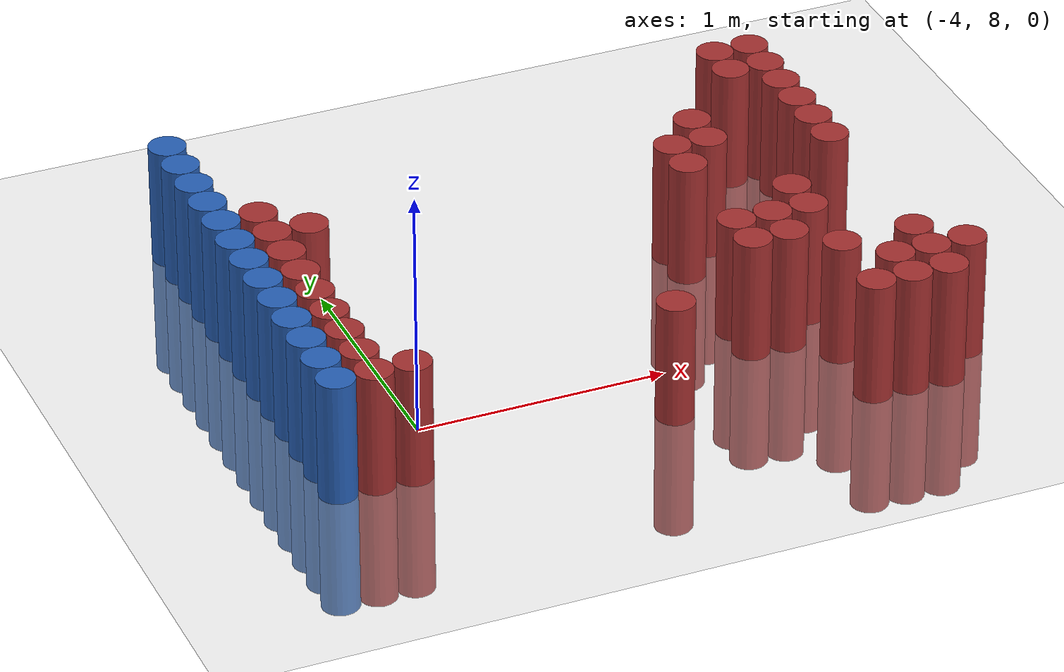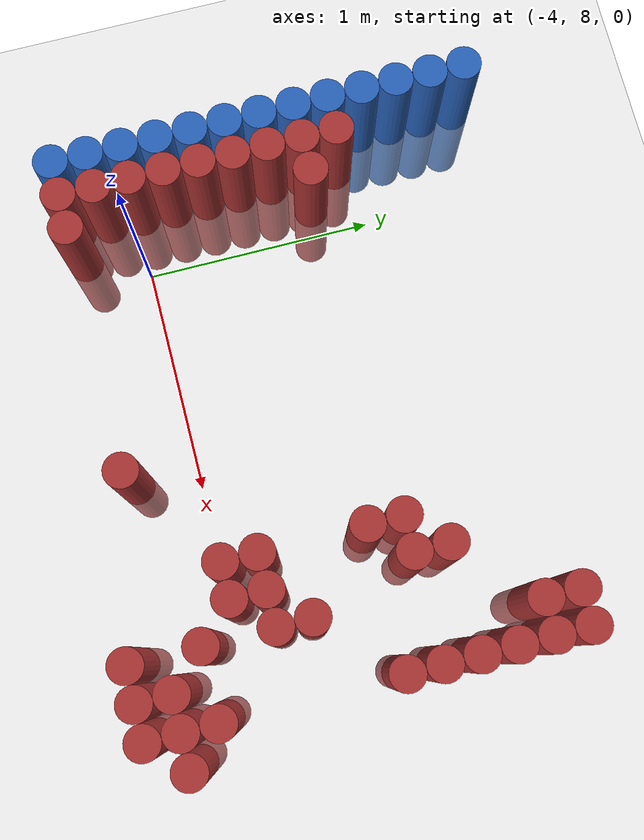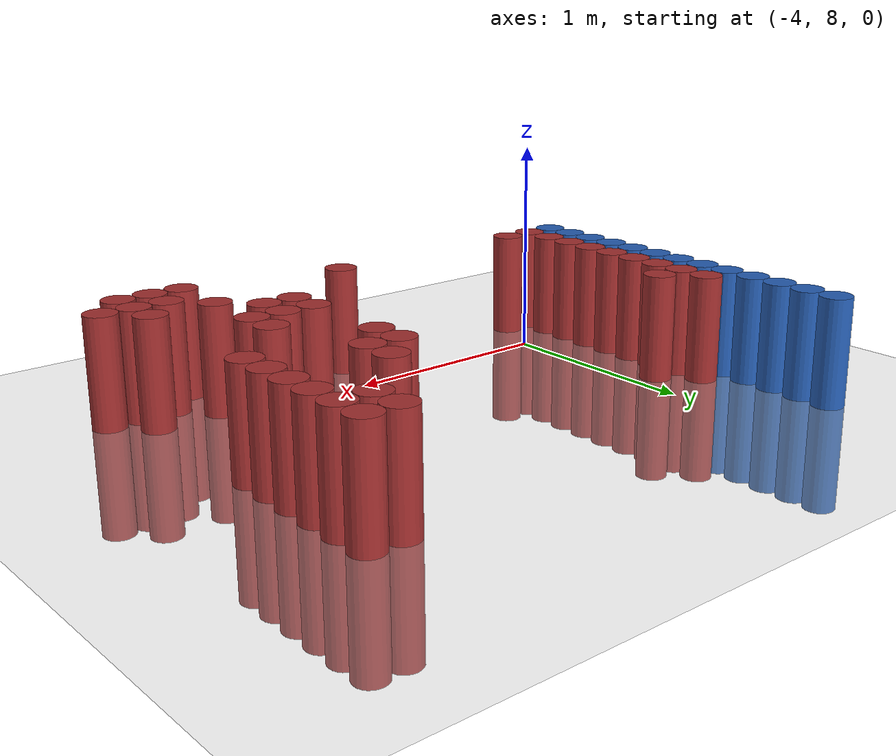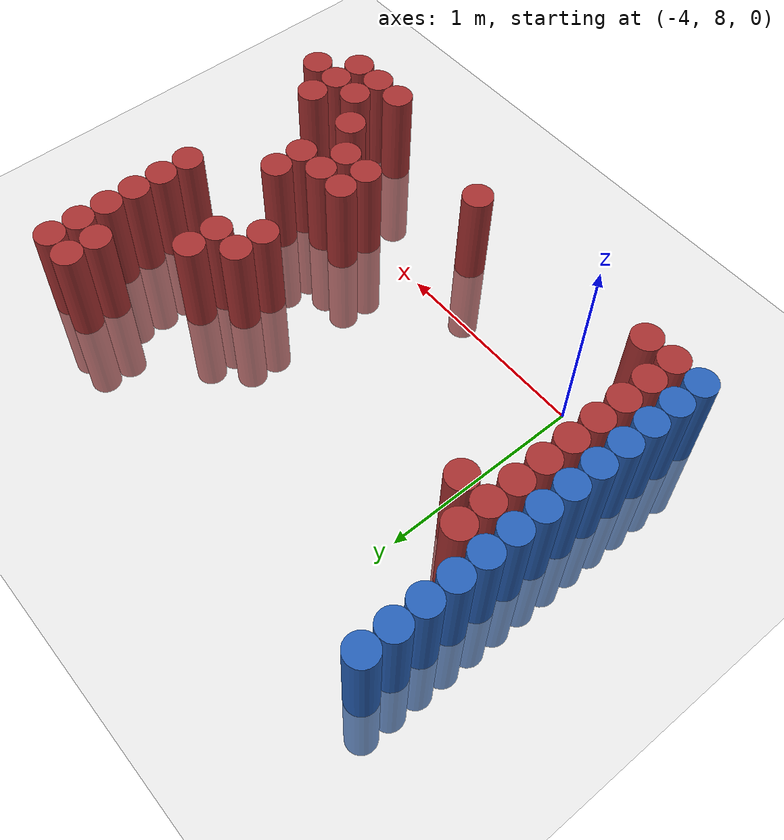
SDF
<sdf version="1.6">
 <world name="default">
  <model name="ground_plane">
   <static>1</static>
   <link name="link">
    <collision name="collision">
     <geometry><plane><normal>0 0 1</normal><size>100 100</size></plane></geometry>
     <surface><friction><ode><mu>100</mu><mu2>50</mu2></ode></friction></surface>
    </collision>
    <visual name="visual">
     <cast_shadows>0</cast_shadows>
     <geometry><plane><normal>0 0 1</normal><size>100 100</size></plane></geometry>
     <material>
      <script><uri>file://media/materials/scripts/gazebo.material</uri><name>Gazebo/Grey</name></script>
     </material>
    </visual>
   </link>
  </model>
  <model name="unit_cylinder_113">
   <static>1</static>
   <pose>-4.425000 7.725000 0.000000 0.000000 0.000000 0.000000</pose>
   <link name="link">
    <inertial>
     <mass>1</mass>
     <inertia><ixx>0.145833</ixx><ixy>0</ixy><ixz>0</ixz><iyy>0.145833</iyy><iyz>0</iyz><izz>0.125</izz></inertia>
    </inertial>
    <collision name="collision">
     <geometry><cylinder><radius>0.075000</radius><length>1</length></cylinder></geometry>
    </collision>
    <visual name="visual">
     <geometry><cylinder><radius>0.075000</radius><length>1</length></cylinder></geometry>
     <material>
      <ambient>0.152000 0.379000 0.720000 1</ambient>
      <diffuse>0.152000 0.379000 0.720000 1</diffuse>
     </material>
     <material>
      <script><name>Gazebo/Grey</name><uri>file://media/materials/scripts/gazebo.material</uri></script>
     </material>
    </visual>
   </link>
  </model>
  <model name="unit_cylinder_114">
   <static>1</static>
   <pose>-4.425000 7.875000 0.000000 0.000000 0.000000 0.000000</pose>
   <link name="link">
    <inertial>
     <mass>1</mass>
     <inertia><ixx>0.145833</ixx><ixy>0</ixy><ixz>0</ixz><iyy>0.145833</iyy><iyz>0</iyz><izz>0.125</izz></inertia>
    </inertial>
    <collision name="collision">
     <geometry><cylinder><radius>0.075000</radius><length>1</length></cylinder></geometry>
    </collision>
    <visual name="visual">
     <geometry><cylinder><radius>0.075000</radius><length>1</length></cylinder></geometry>
     <material>
      <ambient>0.152000 0.379000 0.720000 1</ambient>
      <diffuse>0.152000 0.379000 0.720000 1</diffuse>
     </material>
     <material>
      <script><name>Gazebo/Grey</name><uri>file://media/materials/scripts/gazebo.material</uri></script>
     </material>
    </visual>
   </link>
  </model>
  <model name="unit_cylinder_115">
   <static>1</static>
   <pose>-4.425000 8.025000 0.000000 0.000000 0.000000 0.000000</pose>
   <link name="link">
    <inertial>
     <mass>1</mass>
     <inertia><ixx>0.145833</ixx><ixy>0</ixy><ixz>0</ixz><iyy>0.145833</iyy><iyz>0</iyz><izz>0.125</izz></inertia>
    </inertial>
    <collision name="collision">
     <geometry><cylinder><radius>0.075000</radius><length>1</length></cylinder></geometry>
    </collision>
    <visual name="visual">
     <geometry><cylinder><radius>0.075000</radius><length>1</length></cylinder></geometry>
     <material>
      <ambient>0.152000 0.379000 0.720000 1</ambient>
      <diffuse>0.152000 0.379000 0.720000 1</diffuse>
     </material>
     <material>
      <script><name>Gazebo/Grey</name><uri>file://media/materials/scripts/gazebo.material</uri></script>
     </material>
    </visual>
   </link>
  </model>
  <model name="unit_cylinder_116">
   <static>1</static>
   <pose>-4.425000 8.175000 0.000000 0.000000 0.000000 0.000000</pose>
   <link name="link">
    <inertial>
     <mass>1</mass>
     <inertia><ixx>0.145833</ixx><ixy>0</ixy><ixz>0</ixz><iyy>0.145833</iyy><iyz>0</iyz><izz>0.125</izz></inertia>
    </inertial>
    <collision name="collision">
     <geometry><cylinder><radius>0.075000</radius><length>1</length></cylinder></geometry>
    </collision>
    <visual name="visual">
     <geometry><cylinder><radius>0.075000</radius><length>1</length></cylinder></geometry>
     <material>
      <ambient>0.152000 0.379000 0.720000 1</ambient>
      <diffuse>0.152000 0.379000 0.720000 1</diffuse>
     </material>
     <material>
      <script><name>Gazebo/Grey</name><uri>file://media/materials/scripts/gazebo.material</uri></script>
     </material>
    </visual>
   </link>
  </model>
  <model name="unit_cylinder_117">
   <static>1</static>
   <pose>-4.425000 8.325000 0.000000 0.000000 0.000000 0.000000</pose>
   <link name="link">
    <inertial>
     <mass>1</mass>
     <inertia><ixx>0.145833</ixx><ixy>0</ixy><ixz>0</ixz><iyy>0.145833</iyy><iyz>0</iyz><izz>0.125</izz></inertia>
    </inertial>
    <collision name="collision">
     <geometry><cylinder><radius>0.075000</radius><length>1</length></cylinder></geometry>
    </collision>
    <visual name="visual">
     <geometry><cylinder><radius>0.075000</radius><length>1</length></cylinder></geometry>
     <material>
      <ambient>0.152000 0.379000 0.720000 1</ambient>
      <diffuse>0.152000 0.379000 0.720000 1</diffuse>
     </material>
     <material>
      <script><name>Gazebo/Grey</name><uri>file://media/materials/scripts/gazebo.material</uri></script>
     </material>
    </visual>
   </link>
  </model>
  <model name="unit_cylinder_118">
   <static>1</static>
   <pose>-4.425000 8.475000 0.000000 0.000000 0.000000 0.000000</pose>
   <link name="link">
    <inertial>
     <mass>1</mass>
     <inertia><ixx>0.145833</ixx><ixy>0</ixy><ixz>0</ixz><iyy>0.145833</iyy><iyz>0</iyz><izz>0.125</izz></inertia>
    </inertial>
    <collision name="collision">
     <geometry><cylinder><radius>0.075000</radius><length>1</length></cylinder></geometry>
    </collision>
    <visual name="visual">
     <geometry><cylinder><radius>0.075000</radius><length>1</length></cylinder></geometry>
     <material>
      <ambient>0.152000 0.379000 0.720000 1</ambient>
      <diffuse>0.152000 0.379000 0.720000 1</diffuse>
     </material>
     <material>
      <script><name>Gazebo/Grey</name><uri>file://media/materials/scripts/gazebo.material</uri></script>
     </material>
    </visual>
   </link>
  </model>
  <model name="unit_cylinder_119">
   <static>1</static>
   <pose>-4.425000 8.625000 0.000000 0.000000 0.000000 0.000000</pose>
   <link name="link">
    <inertial>
     <mass>1</mass>
     <inertia><ixx>0.145833</ixx><ixy>0</ixy><ixz>0</ixz><iyy>0.145833</iyy><iyz>0</iyz><izz>0.125</izz></inertia>
    </inertial>
    <collision name="collision">
     <geometry><cylinder><radius>0.075000</radius><length>1</length></cylinder></geometry>
    </collision>
    <visual name="visual">
     <geometry><cylinder><radius>0.075000</radius><length>1</length></cylinder></geometry>
     <material>
      <ambient>0.152000 0.379000 0.720000 1</ambient>
      <diffuse>0.152000 0.379000 0.720000 1</diffuse>
     </material>
     <material>
      <script><name>Gazebo/Grey</name><uri>file://media/materials/scripts/gazebo.material</uri></script>
     </material>
    </visual>
   </link>
  </model>
  <model name="unit_cylinder_120">
   <static>1</static>
   <pose>-4.425000 8.775000 0.000000 0.000000 0.000000 0.000000</pose>
   <link name="link">
    <inertial>
     <mass>1</mass>
     <inertia><ixx>0.145833</ixx><ixy>0</ixy><ixz>0</ixz><iyy>0.145833</iyy><iyz>0</iyz><izz>0.125</izz></inertia>
    </inertial>
    <collision name="collision">
     <geometry><cylinder><radius>0.075000</radius><length>1</length></cylinder></geometry>
    </collision>
    <visual name="visual">
     <geometry><cylinder><radius>0.075000</radius><length>1</length></cylinder></geometry>
     <material>
      <ambient>0.152000 0.379000 0.720000 1</ambient>
      <diffuse>0.152000 0.379000 0.720000 1</diffuse>
     </material>
     <material>
      <script><name>Gazebo/Grey</name><uri>file://media/materials/scripts/gazebo.material</uri></script>
     </material>
    </visual>
   </link>
  </model>
  <model name="unit_cylinder_121">
   <static>1</static>
   <pose>-4.425000 8.925000 0.000000 0.000000 0.000000 0.000000</pose>
   <link name="link">
    <inertial>
     <mass>1</mass>
     <inertia><ixx>0.145833</ixx><ixy>0</ixy><ixz>0</ixz><iyy>0.145833</iyy><iyz>0</iyz><izz>0.125</izz></inertia>
    </inertial>
    <collision name="collision">
     <geometry><cylinder><radius>0.075000</radius><length>1</length></cylinder></geometry>
    </collision>
    <visual name="visual">
     <geometry><cylinder><radius>0.075000</radius><length>1</length></cylinder></geometry>
     <material>
      <ambient>0.152000 0.379000 0.720000 1</ambient>
      <diffuse>0.152000 0.379000 0.720000 1</diffuse>
     </material>
     <material>
      <script><name>Gazebo/Grey</name><uri>file://media/materials/scripts/gazebo.material</uri></script>
     </material>
    </visual>
   </link>
  </model>
  <model name="unit_cylinder_122">
   <static>1</static>
   <pose>-4.425000 9.075000 0.000000 0.000000 0.000000 0.000000</pose>
   <link name="link">
    <inertial>
     <mass>1</mass>
     <inertia><ixx>0.145833</ixx><ixy>0</ixy><ixz>0</ixz><iyy>0.145833</iyy><iyz>0</iyz><izz>0.125</izz></inertia>
    </inertial>
    <collision name="collision">
     <geometry><cylinder><radius>0.075000</radius><length>1</length></cylinder></geometry>
    </collision>
    <visual name="visual">
     <geometry><cylinder><radius>0.075000</radius><length>1</length></cylinder></geometry>
     <material>
      <ambient>0.152000 0.379000 0.720000 1</ambient>
      <diffuse>0.152000 0.379000 0.720000 1</diffuse>
     </material>
     <material>
      <script><name>Gazebo/Grey</name><uri>file://media/materials/scripts/gazebo.material</uri></script>
     </material>
    </visual>
   </link>
  </model>
  <model name="unit_cylinder_123">
   <static>1</static>
   <pose>-4.425000 9.225000 0.000000 0.000000 0.000000 0.000000</pose>
   <link name="link">
    <inertial>
     <mass>1</mass>
     <inertia><ixx>0.145833</ixx><ixy>0</ixy><ixz>0</ixz><iyy>0.145833</iyy><iyz>0</iyz><izz>0.125</izz></inertia>
    </inertial>
    <collision name="collision">
     <geometry><cylinder><radius>0.075000</radius><length>1</length></cylinder></geometry>
    </collision>
    <visual name="visual">
     <geometry><cylinder><radius>0.075000</radius><length>1</length></cylinder></geometry>
     <material>
      <ambient>0.152000 0.379000 0.720000 1</ambient>
      <diffuse>0.152000 0.379000 0.720000 1</diffuse>
     </material>
     <material>
      <script><name>Gazebo/Grey</name><uri>file://media/materials/scripts/gazebo.material</uri></script>
     </material>
    </visual>
   </link>
  </model>
  <model name="unit_cylinder_124">
   <static>1</static>
   <pose>-4.425000 9.375000 0.000000 0.000000 0.000000 0.000000</pose>
   <link name="link">
    <inertial>
     <mass>1</mass>
     <inertia><ixx>0.145833</ixx><ixy>0</ixy><ixz>0</ixz><iyy>0.145833</iyy><iyz>0</iyz><izz>0.125</izz></inertia>
    </inertial>
    <collision name="collision">
     <geometry><cylinder><radius>0.075000</radius><length>1</length></cylinder></geometry>
    </collision>
    <visual name="visual">
     <geometry><cylinder><radius>0.075000</radius><length>1</length></cylinder></geometry>
     <material>
      <ambient>0.152000 0.379000 0.720000 1</ambient>
      <diffuse>0.152000 0.379000 0.720000 1</diffuse>
     </material>
     <material>
      <script><name>Gazebo/Grey</name><uri>file://media/materials/scripts/gazebo.material</uri></script>
     </material>
    </visual>
   </link>
  </model>
  <model name="unit_cylinder_125">
   <static>1</static>
   <pose>-4.425000 9.525000 0.000000 0.000000 0.000000 0.000000</pose>
   <link name="link">
    <inertial>
     <mass>1</mass>
     <inertia><ixx>0.145833</ixx><ixy>0</ixy><ixz>0</ixz><iyy>0.145833</iyy><iyz>0</iyz><izz>0.125</izz></inertia>
    </inertial>
    <collision name="collision">
     <geometry><cylinder><radius>0.075000</radius><length>1</length></cylinder></geometry>
    </collision>
    <visual name="visual">
     <geometry><cylinder><radius>0.075000</radius><length>1</length></cylinder></geometry>
     <material>
      <ambient>0.152000 0.379000 0.720000 1</ambient>
      <diffuse>0.152000 0.379000 0.720000 1</diffuse>
     </material>
     <material>
      <script><name>Gazebo/Grey</name><uri>file://media/materials/scripts/gazebo.material</uri></script>
     </material>
    </visual>
   </link>
  </model>
  <model name="unit_cylinder_133">
   <static>1</static>
   <pose>-4.275000 7.725000 0.000000 0.000000 0.000000 0.000000</pose>
   <link name="link">
    <inertial>
     <mass>1</mass>
     <inertia><ixx>0.145833</ixx><ixy>0</ixy><ixz>0</ixz><iyy>0.145833</iyy><iyz>0</iyz><izz>0.125</izz></inertia>
    </inertial>
    <collision name="collision">
     <geometry><cylinder><radius>0.075000</radius><length>1</length></cylinder></geometry>
    </collision>
    <visual name="visual">
     <geometry><cylinder><radius>0.075000</radius><length>1</length></cylinder></geometry>
     <material>
      <ambient>0.648000 0.192000 0.192000 1</ambient>
      <diffuse>0.648000 0.192000 0.192000 1</diffuse>
     </material>
     <material>
      <script><name>Gazebo/Grey</name><uri>file://media/materials/scripts/gazebo.material</uri></script>
     </material>
    </visual>
   </link>
  </model>
  <model name="unit_cylinder_134">
   <static>1</static>
   <pose>-4.275000 7.875000 0.000000 0.000000 0.000000 0.000000</pose>
   <link name="link">
    <inertial>
     <mass>1</mass>
     <inertia><ixx>0.145833</ixx><ixy>0</ixy><ixz>0</ixz><iyy>0.145833</iyy><iyz>0</iyz><izz>0.125</izz></inertia>
    </inertial>
    <collision name="collision">
     <geometry><cylinder><radius>0.075000</radius><length>1</length></cylinder></geometry>
    </collision>
    <visual name="visual">
     <geometry><cylinder><radius>0.075000</radius><length>1</length></cylinder></geometry>
     <material>
      <ambient>0.648000 0.192000 0.192000 1</ambient>
      <diffuse>0.648000 0.192000 0.192000 1</diffuse>
     </material>
     <material>
      <script><name>Gazebo/Grey</name><uri>file://media/materials/scripts/gazebo.material</uri></script>
     </material>
    </visual>
   </link>
  </model>
  <model name="unit_cylinder_135">
   <static>1</static>
   <pose>-4.275000 8.025000 0.000000 0.000000 0.000000 0.000000</pose>
   <link name="link">
    <inertial>
     <mass>1</mass>
     <inertia><ixx>0.145833</ixx><ixy>0</ixy><ixz>0</ixz><iyy>0.145833</iyy><iyz>0</iyz><izz>0.125</izz></inertia>
    </inertial>
    <collision name="collision">
     <geometry><cylinder><radius>0.075000</radius><length>1</length></cylinder></geometry>
    </collision>
    <visual name="visual">
     <geometry><cylinder><radius>0.075000</radius><length>1</length></cylinder></geometry>
     <material>
      <ambient>0.648000 0.192000 0.192000 1</ambient>
      <diffuse>0.648000 0.192000 0.192000 1</diffuse>
     </material>
     <material>
      <script><name>Gazebo/Grey</name><uri>file://media/materials/scripts/gazebo.material</uri></script>
     </material>
    </visual>
   </link>
  </model>
  <model name="unit_cylinder_136">
   <static>1</static>
   <pose>-4.275000 8.175000 0.000000 0.000000 0.000000 0.000000</pose>
   <link name="link">
    <inertial>
     <mass>1</mass>
     <inertia><ixx>0.145833</ixx><ixy>0</ixy><ixz>0</ixz><iyy>0.145833</iyy><iyz>0</iyz><izz>0.125</izz></inertia>
    </inertial>
    <collision name="collision">
     <geometry><cylinder><radius>0.075000</radius><length>1</length></cylinder></geometry>
    </collision>
    <visual name="visual">
     <geometry><cylinder><radius>0.075000</radius><length>1</length></cylinder></geometry>
     <material>
      <ambient>0.648000 0.192000 0.192000 1</ambient>
      <diffuse>0.648000 0.192000 0.192000 1</diffuse>
     </material>
     <material>
      <script><name>Gazebo/Grey</name><uri>file://media/materials/scripts/gazebo.material</uri></script>
     </material>
    </visual>
   </link>
  </model>
  <model name="unit_cylinder_137">
   <static>1</static>
   <pose>-4.275000 8.325000 0.000000 0.000000 0.000000 0.000000</pose>
   <link name="link">
    <inertial>
     <mass>1</mass>
     <inertia><ixx>0.145833</ixx><ixy>0</ixy><ixz>0</ixz><iyy>0.145833</iyy><iyz>0</iyz><izz>0.125</izz></inertia>
    </inertial>
    <collision name="collision">
     <geometry><cylinder><radius>0.075000</radius><length>1</length></cylinder></geometry>
    </collision>
    <visual name="visual">
     <geometry><cylinder><radius>0.075000</radius><length>1</length></cylinder></geometry>
     <material>
      <ambient>0.648000 0.192000 0.192000 1</ambient>
      <diffuse>0.648000 0.192000 0.192000 1</diffuse>
     </material>
     <material>
      <script><name>Gazebo/Grey</name><uri>file://media/materials/scripts/gazebo.material</uri></script>
     </material>
    </visual>
   </link>
  </model>
  <model name="unit_cylinder_138">
   <static>1</static>
   <pose>-4.275000 8.475000 0.000000 0.000000 0.000000 0.000000</pose>
   <link name="link">
    <inertial>
     <mass>1</mass>
     <inertia><ixx>0.145833</ixx><ixy>0</ixy><ixz>0</ixz><iyy>0.145833</iyy><iyz>0</iyz><izz>0.125</izz></inertia>
    </inertial>
    <collision name="collision">
     <geometry><cylinder><radius>0.075000</radius><length>1</length></cylinder></geometry>
    </collision>
    <visual name="visual">
     <geometry><cylinder><radius>0.075000</radius><length>1</length></cylinder></geometry>
     <material>
      <ambient>0.648000 0.192000 0.192000 1</ambient>
      <diffuse>0.648000 0.192000 0.192000 1</diffuse>
     </material>
     <material>
      <script><name>Gazebo/Grey</name><uri>file://media/materials/scripts/gazebo.material</uri></script>
     </material>
    </visual>
   </link>
  </model>
  <model name="unit_cylinder_139">
   <static>1</static>
   <pose>-4.275000 8.625000 0.000000 0.000000 0.000000 0.000000</pose>
   <link name="link">
    <inertial>
     <mass>1</mass>
     <inertia><ixx>0.145833</ixx><ixy>0</ixy><ixz>0</ixz><iyy>0.145833</iyy><iyz>0</iyz><izz>0.125</izz></inertia>
    </inertial>
    <collision name="collision">
     <geometry><cylinder><radius>0.075000</radius><length>1</length></cylinder></geometry>
    </collision>
    <visual name="visual">
     <geometry><cylinder><radius>0.075000</radius><length>1</length></cylinder></geometry>
     <material>
      <ambient>0.648000 0.192000 0.192000 1</ambient>
      <diffuse>0.648000 0.192000 0.192000 1</diffuse>
     </material>
     <material>
      <script><name>Gazebo/Grey</name><uri>file://media/materials/scripts/gazebo.material</uri></script>
     </material>
    </visual>
   </link>
  </model>
  <model name="unit_cylinder_140">
   <static>1</static>
   <pose>-4.275000 8.775000 0.000000 0.000000 0.000000 0.000000</pose>
   <link name="link">
    <inertial>
     <mass>1</mass>
     <inertia><ixx>0.145833</ixx><ixy>0</ixy><ixz>0</ixz><iyy>0.145833</iyy><iyz>0</iyz><izz>0.125</izz></inertia>
    </inertial>
    <collision name="collision">
     <geometry><cylinder><radius>0.075000</radius><length>1</length></cylinder></geometry>
    </collision>
    <visual name="visual">
     <geometry><cylinder><radius>0.075000</radius><length>1</length></cylinder></geometry>
     <material>
      <ambient>0.648000 0.192000 0.192000 1</ambient>
      <diffuse>0.648000 0.192000 0.192000 1</diffuse>
     </material>
     <material>
      <script><name>Gazebo/Grey</name><uri>file://media/materials/scripts/gazebo.material</uri></script>
     </material>
    </visual>
   </link>
  </model>
  <model name="unit_cylinder_141">
   <static>1</static>
   <pose>-4.275000 8.925000 0.000000 0.000000 0.000000 0.000000</pose>
   <link name="link">
    <inertial>
     <mass>1</mass>
     <inertia><ixx>0.145833</ixx><ixy>0</ixy><ixz>0</ixz><iyy>0.145833</iyy><iyz>0</iyz><izz>0.125</izz></inertia>
    </inertial>
    <collision name="collision">
     <geometry><cylinder><radius>0.075000</radius><length>1</length></cylinder></geometry>
    </collision>
    <visual name="visual">
     <geometry><cylinder><radius>0.075000</radius><length>1</length></cylinder></geometry>
     <material>
      <ambient>0.648000 0.192000 0.192000 1</ambient>
      <diffuse>0.648000 0.192000 0.192000 1</diffuse>
     </material>
     <material>
      <script><name>Gazebo/Grey</name><uri>file://media/materials/scripts/gazebo.material</uri></script>
     </material>
    </visual>
   </link>
  </model>
  <model name="unit_cylinder_150">
   <static>1</static>
   <pose>-4.125000 7.725000 0.000000 0.000000 0.000000 0.000000</pose>
   <link name="link">
    <inertial>
     <mass>1</mass>
     <inertia><ixx>0.145833</ixx><ixy>0</ixy><ixz>0</ixz><iyy>0.145833</iyy><iyz>0</iyz><izz>0.125</izz></inertia>
    </inertial>
    <collision name="collision">
     <geometry><cylinder><radius>0.075000</radius><length>1</length></cylinder></geometry>
    </collision>
    <visual name="visual">
     <geometry><cylinder><radius>0.075000</radius><length>1</length></cylinder></geometry>
     <material>
      <ambient>0.648000 0.192000 0.192000 1</ambient>
      <diffuse>0.648000 0.192000 0.192000 1</diffuse>
     </material>
     <material>
      <script><name>Gazebo/Grey</name><uri>file://media/materials/scripts/gazebo.material</uri></script>
     </material>
    </visual>
   </link>
  </model>
  <model name="unit_cylinder_151">
   <static>1</static>
   <pose>-4.125000 8.775000 0.000000 0.000000 0.000000 0.000000</pose>
   <link name="link">
    <inertial>
     <mass>1</mass>
     <inertia><ixx>0.145833</ixx><ixy>0</ixy><ixz>0</ixz><iyy>0.145833</iyy><iyz>0</iyz><izz>0.125</izz></inertia>
    </inertial>
    <collision name="collision">
     <geometry><cylinder><radius>0.075000</radius><length>1</length></cylinder></geometry>
    </collision>
    <visual name="visual">
     <geometry><cylinder><radius>0.075000</radius><length>1</length></cylinder></geometry>
     <material>
      <ambient>0.648000 0.192000 0.192000 1</ambient>
      <diffuse>0.648000 0.192000 0.192000 1</diffuse>
     </material>
     <material>
      <script><name>Gazebo/Grey</name><uri>file://media/materials/scripts/gazebo.material</uri></script>
     </material>
    </visual>
   </link>
  </model>
  <model name="unit_cylinder_175">
   <static>1</static>
   <pose>-3.075000 7.725000 0.000000 0.000000 0.000000 0.000000</pose>
   <link name="link">
    <inertial>
     <mass>1</mass>
     <inertia><ixx>0.145833</ixx><ixy>0</ixy><ixz>0</ixz><iyy>0.145833</iyy><iyz>0</iyz><izz>0.125</izz></inertia>
    </inertial>
    <collision name="collision">
     <geometry><cylinder><radius>0.075000</radius><length>1</length></cylinder></geometry>
    </collision>
    <visual name="visual">
     <geometry><cylinder><radius>0.075000</radius><length>1</length></cylinder></geometry>
     <material>
      <ambient>0.648000 0.192000 0.192000 1</ambient>
      <diffuse>0.648000 0.192000 0.192000 1</diffuse>
     </material>
     <material>
      <script><name>Gazebo/Grey</name><uri>file://media/materials/scripts/gazebo.material</uri></script>
     </material>
    </visual>
   </link>
  </model>
  <model name="unit_cylinder_178">
   <static>1</static>
   <pose>-2.625000 8.025000 0.000000 0.000000 0.000000 0.000000</pose>
   <link name="link">
    <inertial>
     <mass>1</mass>
     <inertia><ixx>0.145833</ixx><ixy>0</ixy><ixz>0</ixz><iyy>0.145833</iyy><iyz>0</iyz><izz>0.125</izz></inertia>
    </inertial>
    <collision name="collision">
     <geometry><cylinder><radius>0.075000</radius><length>1</length></cylinder></geometry>
    </collision>
    <visual name="visual">
     <geometry><cylinder><radius>0.075000</radius><length>1</length></cylinder></geometry>
     <material>
      <ambient>0.648000 0.192000 0.192000 1</ambient>
      <diffuse>0.648000 0.192000 0.192000 1</diffuse>
     </material>
     <material>
      <script><name>Gazebo/Grey</name><uri>file://media/materials/scripts/gazebo.material</uri></script>
     </material>
    </visual>
   </link>
  </model>
  <model name="unit_cylinder_179">
   <static>1</static>
   <pose>-2.625000 8.175000 0.000000 0.000000 0.000000 0.000000</pose>
   <link name="link">
    <inertial>
     <mass>1</mass>
     <inertia><ixx>0.145833</ixx><ixy>0</ixy><ixz>0</ixz><iyy>0.145833</iyy><iyz>0</iyz><izz>0.125</izz></inertia>
    </inertial>
    <collision name="collision">
     <geometry><cylinder><radius>0.075000</radius><length>1</length></cylinder></geometry>
    </collision>
    <visual name="visual">
     <geometry><cylinder><radius>0.075000</radius><length>1</length></cylinder></geometry>
     <material>
      <ambient>0.648000 0.192000 0.192000 1</ambient>
      <diffuse>0.648000 0.192000 0.192000 1</diffuse>
     </material>
     <material>
      <script><name>Gazebo/Grey</name><uri>file://media/materials/scripts/gazebo.material</uri></script>
     </material>
    </visual>
   </link>
  </model>
  <model name="unit_cylinder_180">
   <static>1</static>
   <pose>-2.625000 8.625000 0.000000 0.000000 0.000000 0.000000</pose>
   <link name="link">
    <inertial>
     <mass>1</mass>
     <inertia><ixx>0.145833</ixx><ixy>0</ixy><ixz>0</ixz><iyy>0.145833</iyy><iyz>0</iyz><izz>0.125</izz></inertia>
    </inertial>
    <collision name="collision">
     <geometry><cylinder><radius>0.075000</radius><length>1</length></cylinder></geometry>
    </collision>
    <visual name="visual">
     <geometry><cylinder><radius>0.075000</radius><length>1</length></cylinder></geometry>
     <material>
      <ambient>0.648000 0.192000 0.192000 1</ambient>
      <diffuse>0.648000 0.192000 0.192000 1</diffuse>
     </material>
     <material>
      <script><name>Gazebo/Grey</name><uri>file://media/materials/scripts/gazebo.material</uri></script>
     </material>
    </visual>
   </link>
  </model>
  <model name="unit_cylinder_181">
   <static>1</static>
   <pose>-2.625000 8.775000 0.000000 0.000000 0.000000 0.000000</pose>
   <link name="link">
    <inertial>
     <mass>1</mass>
     <inertia><ixx>0.145833</ixx><ixy>0</ixy><ixz>0</ixz><iyy>0.145833</iyy><iyz>0</iyz><izz>0.125</izz></inertia>
    </inertial>
    <collision name="collision">
     <geometry><cylinder><radius>0.075000</radius><length>1</length></cylinder></geometry>
    </collision>
    <visual name="visual">
     <geometry><cylinder><radius>0.075000</radius><length>1</length></cylinder></geometry>
     <material>
      <ambient>0.648000 0.192000 0.192000 1</ambient>
      <diffuse>0.648000 0.192000 0.192000 1</diffuse>
     </material>
     <material>
      <script><name>Gazebo/Grey</name><uri>file://media/materials/scripts/gazebo.material</uri></script>
     </material>
    </visual>
   </link>
  </model>
  <model name="unit_cylinder_184">
   <static>1</static>
   <pose>-2.475000 8.025000 0.000000 0.000000 0.000000 0.000000</pose>
   <link name="link">
    <inertial>
     <mass>1</mass>
     <inertia><ixx>0.145833</ixx><ixy>0</ixy><ixz>0</ixz><iyy>0.145833</iyy><iyz>0</iyz><izz>0.125</izz></inertia>
    </inertial>
    <collision name="collision">
     <geometry><cylinder><radius>0.075000</radius><length>1</length></cylinder></geometry>
    </collision>
    <visual name="visual">
     <geometry><cylinder><radius>0.075000</radius><length>1</length></cylinder></geometry>
     <material>
      <ambient>0.648000 0.192000 0.192000 1</ambient>
      <diffuse>0.648000 0.192000 0.192000 1</diffuse>
     </material>
     <material>
      <script><name>Gazebo/Grey</name><uri>file://media/materials/scripts/gazebo.material</uri></script>
     </material>
    </visual>
   </link>
  </model>
  <model name="unit_cylinder_185">
   <static>1</static>
   <pose>-2.475000 8.175000 0.000000 0.000000 0.000000 0.000000</pose>
   <link name="link">
    <inertial>
     <mass>1</mass>
     <inertia><ixx>0.145833</ixx><ixy>0</ixy><ixz>0</ixz><iyy>0.145833</iyy><iyz>0</iyz><izz>0.125</izz></inertia>
    </inertial>
    <collision name="collision">
     <geometry><cylinder><radius>0.075000</radius><length>1</length></cylinder></geometry>
    </collision>
    <visual name="visual">
     <geometry><cylinder><radius>0.075000</radius><length>1</length></cylinder></geometry>
     <material>
      <ambient>0.648000 0.192000 0.192000 1</ambient>
      <diffuse>0.648000 0.192000 0.192000 1</diffuse>
     </material>
     <material>
      <script><name>Gazebo/Grey</name><uri>file://media/materials/scripts/gazebo.material</uri></script>
     </material>
    </visual>
   </link>
  </model>
  <model name="unit_cylinder_186">
   <static>1</static>
   <pose>-2.475000 8.775000 0.000000 0.000000 0.000000 0.000000</pose>
   <link name="link">
    <inertial>
     <mass>1</mass>
     <inertia><ixx>0.145833</ixx><ixy>0</ixy><ixz>0</ixz><iyy>0.145833</iyy><iyz>0</iyz><izz>0.125</izz></inertia>
    </inertial>
    <collision name="collision">
     <geometry><cylinder><radius>0.075000</radius><length>1</length></cylinder></geometry>
    </collision>
    <visual name="visual">
     <geometry><cylinder><radius>0.075000</radius><length>1</length></cylinder></geometry>
     <material>
      <ambient>0.648000 0.192000 0.192000 1</ambient>
      <diffuse>0.648000 0.192000 0.192000 1</diffuse>
     </material>
     <material>
      <script><name>Gazebo/Grey</name><uri>file://media/materials/scripts/gazebo.material</uri></script>
     </material>
    </visual>
   </link>
  </model>
  <model name="unit_cylinder_187">
   <static>1</static>
   <pose>-2.475000 8.925000 0.000000 0.000000 0.000000 0.000000</pose>
   <link name="link">
    <inertial>
     <mass>1</mass>
     <inertia><ixx>0.145833</ixx><ixy>0</ixy><ixz>0</ixz><iyy>0.145833</iyy><iyz>0</iyz><izz>0.125</izz></inertia>
    </inertial>
    <collision name="collision">
     <geometry><cylinder><radius>0.075000</radius><length>1</length></cylinder></geometry>
    </collision>
    <visual name="visual">
     <geometry><cylinder><radius>0.075000</radius><length>1</length></cylinder></geometry>
     <material>
      <ambient>0.648000 0.192000 0.192000 1</ambient>
      <diffuse>0.648000 0.192000 0.192000 1</diffuse>
     </material>
     <material>
      <script><name>Gazebo/Grey</name><uri>file://media/materials/scripts/gazebo.material</uri></script>
     </material>
    </visual>
   </link>
  </model>
  <model name="unit_cylinder_195">
   <static>1</static>
   <pose>-2.325000 7.575000 0.000000 0.000000 0.000000 0.000000</pose>
   <link name="link">
    <inertial>
     <mass>1</mass>
     <inertia><ixx>0.145833</ixx><ixy>0</ixy><ixz>0</ixz><iyy>0.145833</iyy><iyz>0</iyz><izz>0.125</izz></inertia>
    </inertial>
    <collision name="collision">
     <geometry><cylinder><radius>0.075000</radius><length>1</length></cylinder></geometry>
    </collision>
    <visual name="visual">
     <geometry><cylinder><radius>0.075000</radius><length>1</length></cylinder></geometry>
     <material>
      <ambient>0.648000 0.192000 0.192000 1</ambient>
      <diffuse>0.648000 0.192000 0.192000 1</diffuse>
     </material>
     <material>
      <script><name>Gazebo/Grey</name><uri>file://media/materials/scripts/gazebo.material</uri></script>
     </material>
    </visual>
   </link>
  </model>
  <model name="unit_cylinder_196">
   <static>1</static>
   <pose>-2.325000 7.875000 0.000000 0.000000 0.000000 0.000000</pose>
   <link name="link">
    <inertial>
     <mass>1</mass>
     <inertia><ixx>0.145833</ixx><ixy>0</ixy><ixz>0</ixz><iyy>0.145833</iyy><iyz>0</iyz><izz>0.125</izz></inertia>
    </inertial>
    <collision name="collision">
     <geometry><cylinder><radius>0.075000</radius><length>1</length></cylinder></geometry>
    </collision>
    <visual name="visual">
     <geometry><cylinder><radius>0.075000</radius><length>1</length></cylinder></geometry>
     <material>
      <ambient>0.648000 0.192000 0.192000 1</ambient>
      <diffuse>0.648000 0.192000 0.192000 1</diffuse>
     </material>
     <material>
      <script><name>Gazebo/Grey</name><uri>file://media/materials/scripts/gazebo.material</uri></script>
     </material>
    </visual>
   </link>
  </model>
  <model name="unit_cylinder_197">
   <static>1</static>
   <pose>-2.325000 8.175000 0.000000 0.000000 0.000000 0.000000</pose>
   <link name="link">
    <inertial>
     <mass>1</mass>
     <inertia><ixx>0.145833</ixx><ixy>0</ixy><ixz>0</ixz><iyy>0.145833</iyy><iyz>0</iyz><izz>0.125</izz></inertia>
    </inertial>
    <collision name="collision">
     <geometry><cylinder><radius>0.075000</radius><length>1</length></cylinder></geometry>
    </collision>
    <visual name="visual">
     <geometry><cylinder><radius>0.075000</radius><length>1</length></cylinder></geometry>
     <material>
      <ambient>0.648000 0.192000 0.192000 1</ambient>
      <diffuse>0.648000 0.192000 0.192000 1</diffuse>
     </material>
     <material>
      <script><name>Gazebo/Grey</name><uri>file://media/materials/scripts/gazebo.material</uri></script>
     </material>
    </visual>
   </link>
  </model>
  <model name="unit_cylinder_198">
   <static>1</static>
   <pose>-2.325000 8.325000 0.000000 0.000000 0.000000 0.000000</pose>
   <link name="link">
    <inertial>
     <mass>1</mass>
     <inertia><ixx>0.145833</ixx><ixy>0</ixy><ixz>0</ixz><iyy>0.145833</iyy><iyz>0</iyz><izz>0.125</izz></inertia>
    </inertial>
    <collision name="collision">
     <geometry><cylinder><radius>0.075000</radius><length>1</length></cylinder></geometry>
    </collision>
    <visual name="visual">
     <geometry><cylinder><radius>0.075000</radius><length>1</length></cylinder></geometry>
     <material>
      <ambient>0.648000 0.192000 0.192000 1</ambient>
      <diffuse>0.648000 0.192000 0.192000 1</diffuse>
     </material>
     <material>
      <script><name>Gazebo/Grey</name><uri>file://media/materials/scripts/gazebo.material</uri></script>
     </material>
    </visual>
   </link>
  </model>
  <model name="unit_cylinder_204">
   <static>1</static>
   <pose>-2.175000 7.575000 0.000000 0.000000 0.000000 0.000000</pose>
   <link name="link">
    <inertial>
     <mass>1</mass>
     <inertia><ixx>0.145833</ixx><ixy>0</ixy><ixz>0</ixz><iyy>0.145833</iyy><iyz>0</iyz><izz>0.125</izz></inertia>
    </inertial>
    <collision name="collision">
     <geometry><cylinder><radius>0.075000</radius><length>1</length></cylinder></geometry>
    </collision>
    <visual name="visual">
     <geometry><cylinder><radius>0.075000</radius><length>1</length></cylinder></geometry>
     <material>
      <ambient>0.648000 0.192000 0.192000 1</ambient>
      <diffuse>0.648000 0.192000 0.192000 1</diffuse>
     </material>
     <material>
      <script><name>Gazebo/Grey</name><uri>file://media/materials/scripts/gazebo.material</uri></script>
     </material>
    </visual>
   </link>
  </model>
  <model name="unit_cylinder_205">
   <static>1</static>
   <pose>-2.175000 7.725000 0.000000 0.000000 0.000000 0.000000</pose>
   <link name="link">
    <inertial>
     <mass>1</mass>
     <inertia><ixx>0.145833</ixx><ixy>0</ixy><ixz>0</ixz><iyy>0.145833</iyy><iyz>0</iyz><izz>0.125</izz></inertia>
    </inertial>
    <collision name="collision">
     <geometry><cylinder><radius>0.075000</radius><length>1</length></cylinder></geometry>
    </collision>
    <visual name="visual">
     <geometry><cylinder><radius>0.075000</radius><length>1</length></cylinder></geometry>
     <material>
      <ambient>0.648000 0.192000 0.192000 1</ambient>
      <diffuse>0.648000 0.192000 0.192000 1</diffuse>
     </material>
     <material>
      <script><name>Gazebo/Grey</name><uri>file://media/materials/scripts/gazebo.material</uri></script>
     </material>
    </visual>
   </link>
  </model>
  <model name="unit_cylinder_206">
   <static>1</static>
   <pose>-2.175000 9.225000 0.000000 0.000000 0.000000 0.000000</pose>
   <link name="link">
    <inertial>
     <mass>1</mass>
     <inertia><ixx>0.145833</ixx><ixy>0</ixy><ixz>0</ixz><iyy>0.145833</iyy><iyz>0</iyz><izz>0.125</izz></inertia>
    </inertial>
    <collision name="collision">
     <geometry><cylinder><radius>0.075000</radius><length>1</length></cylinder></geometry>
    </collision>
    <visual name="visual">
     <geometry><cylinder><radius>0.075000</radius><length>1</length></cylinder></geometry>
     <material>
      <ambient>0.648000 0.192000 0.192000 1</ambient>
      <diffuse>0.648000 0.192000 0.192000 1</diffuse>
     </material>
     <material>
      <script><name>Gazebo/Grey</name><uri>file://media/materials/scripts/gazebo.material</uri></script>
     </material>
    </visual>
   </link>
  </model>
  <model name="unit_cylinder_207">
   <static>1</static>
   <pose>-2.175000 9.375000 0.000000 0.000000 0.000000 0.000000</pose>
   <link name="link">
    <inertial>
     <mass>1</mass>
     <inertia><ixx>0.145833</ixx><ixy>0</ixy><ixz>0</ixz><iyy>0.145833</iyy><iyz>0</iyz><izz>0.125</izz></inertia>
    </inertial>
    <collision name="collision">
     <geometry><cylinder><radius>0.075000</radius><length>1</length></cylinder></geometry>
    </collision>
    <visual name="visual">
     <geometry><cylinder><radius>0.075000</radius><length>1</length></cylinder></geometry>
     <material>
      <ambient>0.648000 0.192000 0.192000 1</ambient>
      <diffuse>0.648000 0.192000 0.192000 1</diffuse>
     </material>
     <material>
      <script><name>Gazebo/Grey</name><uri>file://media/materials/scripts/gazebo.material</uri></script>
     </material>
    </visual>
   </link>
  </model>
  <model name="unit_cylinder_211">
   <static>1</static>
   <pose>-2.025000 7.575000 0.000000 0.000000 0.000000 0.000000</pose>
   <link name="link">
    <inertial>
     <mass>1</mass>
     <inertia><ixx>0.145833</ixx><ixy>0</ixy><ixz>0</ixz><iyy>0.145833</iyy><iyz>0</iyz><izz>0.125</izz></inertia>
    </inertial>
    <collision name="collision">
     <geometry><cylinder><radius>0.075000</radius><length>1</length></cylinder></geometry>
    </collision>
    <visual name="visual">
     <geometry><cylinder><radius>0.075000</radius><length>1</length></cylinder></geometry>
     <material>
      <ambient>0.648000 0.192000 0.192000 1</ambient>
      <diffuse>0.648000 0.192000 0.192000 1</diffuse>
     </material>
     <material>
      <script><name>Gazebo/Grey</name><uri>file://media/materials/scripts/gazebo.material</uri></script>
     </material>
    </visual>
   </link>
  </model>
  <model name="unit_cylinder_212">
   <static>1</static>
   <pose>-2.025000 7.725000 0.000000 0.000000 0.000000 0.000000</pose>
   <link name="link">
    <inertial>
     <mass>1</mass>
     <inertia><ixx>0.145833</ixx><ixy>0</ixy><ixz>0</ixz><iyy>0.145833</iyy><iyz>0</iyz><izz>0.125</izz></inertia>
    </inertial>
    <collision name="collision">
     <geometry><cylinder><radius>0.075000</radius><length>1</length></cylinder></geometry>
    </collision>
    <visual name="visual">
     <geometry><cylinder><radius>0.075000</radius><length>1</length></cylinder></geometry>
     <material>
      <ambient>0.648000 0.192000 0.192000 1</ambient>
      <diffuse>0.648000 0.192000 0.192000 1</diffuse>
     </material>
     <material>
      <script><name>Gazebo/Grey</name><uri>file://media/materials/scripts/gazebo.material</uri></script>
     </material>
    </visual>
   </link>
  </model>
  <model name="unit_cylinder_213">
   <static>1</static>
   <pose>-2.025000 7.875000 0.000000 0.000000 0.000000 0.000000</pose>
   <link name="link">
    <inertial>
     <mass>1</mass>
     <inertia><ixx>0.145833</ixx><ixy>0</ixy><ixz>0</ixz><iyy>0.145833</iyy><iyz>0</iyz><izz>0.125</izz></inertia>
    </inertial>
    <collision name="collision">
     <geometry><cylinder><radius>0.075000</radius><length>1</length></cylinder></geometry>
    </collision>
    <visual name="visual">
     <geometry><cylinder><radius>0.075000</radius><length>1</length></cylinder></geometry>
     <material>
      <ambient>0.648000 0.192000 0.192000 1</ambient>
      <diffuse>0.648000 0.192000 0.192000 1</diffuse>
     </material>
     <material>
      <script><name>Gazebo/Grey</name><uri>file://media/materials/scripts/gazebo.material</uri></script>
     </material>
    </visual>
   </link>
  </model>
  <model name="unit_cylinder_214">
   <static>1</static>
   <pose>-2.025000 8.625000 0.000000 0.000000 0.000000 0.000000</pose>
   <link name="link">
    <inertial>
     <mass>1</mass>
     <inertia><ixx>0.145833</ixx><ixy>0</ixy><ixz>0</ixz><iyy>0.145833</iyy><iyz>0</iyz><izz>0.125</izz></inertia>
    </inertial>
    <collision name="collision">
     <geometry><cylinder><radius>0.075000</radius><length>1</length></cylinder></geometry>
    </collision>
    <visual name="visual">
     <geometry><cylinder><radius>0.075000</radius><length>1</length></cylinder></geometry>
     <material>
      <ambient>0.648000 0.192000 0.192000 1</ambient>
      <diffuse>0.648000 0.192000 0.192000 1</diffuse>
     </material>
     <material>
      <script><name>Gazebo/Grey</name><uri>file://media/materials/scripts/gazebo.material</uri></script>
     </material>
    </visual>
   </link>
  </model>
  <model name="unit_cylinder_215">
   <static>1</static>
   <pose>-2.025000 8.775000 0.000000 0.000000 0.000000 0.000000</pose>
   <link name="link">
    <inertial>
     <mass>1</mass>
     <inertia><ixx>0.145833</ixx><ixy>0</ixy><ixz>0</ixz><iyy>0.145833</iyy><iyz>0</iyz><izz>0.125</izz></inertia>
    </inertial>
    <collision name="collision">
     <geometry><cylinder><radius>0.075000</radius><length>1</length></cylinder></geometry>
    </collision>
    <visual name="visual">
     <geometry><cylinder><radius>0.075000</radius><length>1</length></cylinder></geometry>
     <material>
      <ambient>0.648000 0.192000 0.192000 1</ambient>
      <diffuse>0.648000 0.192000 0.192000 1</diffuse>
     </material>
     <material>
      <script><name>Gazebo/Grey</name><uri>file://media/materials/scripts/gazebo.material</uri></script>
     </material>
    </visual>
   </link>
  </model>
  <model name="unit_cylinder_216">
   <static>1</static>
   <pose>-2.025000 8.925000 0.000000 0.000000 0.000000 0.000000</pose>
   <link name="link">
    <inertial>
     <mass>1</mass>
     <inertia><ixx>0.145833</ixx><ixy>0</ixy><ixz>0</ixz><iyy>0.145833</iyy><iyz>0</iyz><izz>0.125</izz></inertia>
    </inertial>
    <collision name="collision">
     <geometry><cylinder><radius>0.075000</radius><length>1</length></cylinder></geometry>
    </collision>
    <visual name="visual">
     <geometry><cylinder><radius>0.075000</radius><length>1</length></cylinder></geometry>
     <material>
      <ambient>0.648000 0.192000 0.192000 1</ambient>
      <diffuse>0.648000 0.192000 0.192000 1</diffuse>
     </material>
     <material>
      <script><name>Gazebo/Grey</name><uri>file://media/materials/scripts/gazebo.material</uri></script>
     </material>
    </visual>
   </link>
  </model>
  <model name="unit_cylinder_217">
   <static>1</static>
   <pose>-2.025000 9.075000 0.000000 0.000000 0.000000 0.000000</pose>
   <link name="link">
    <inertial>
     <mass>1</mass>
     <inertia><ixx>0.145833</ixx><ixy>0</ixy><ixz>0</ixz><iyy>0.145833</iyy><iyz>0</iyz><izz>0.125</izz></inertia>
    </inertial>
    <collision name="collision">
     <geometry><cylinder><radius>0.075000</radius><length>1</length></cylinder></geometry>
    </collision>
    <visual name="visual">
     <geometry><cylinder><radius>0.075000</radius><length>1</length></cylinder></geometry>
     <material>
      <ambient>0.648000 0.192000 0.192000 1</ambient>
      <diffuse>0.648000 0.192000 0.192000 1</diffuse>
     </material>
     <material>
      <script><name>Gazebo/Grey</name><uri>file://media/materials/scripts/gazebo.material</uri></script>
     </material>
    </visual>
   </link>
  </model>
  <model name="unit_cylinder_218">
   <static>1</static>
   <pose>-2.025000 9.225000 0.000000 0.000000 0.000000 0.000000</pose>
   <link name="link">
    <inertial>
     <mass>1</mass>
     <inertia><ixx>0.145833</ixx><ixy>0</ixy><ixz>0</ixz><iyy>0.145833</iyy><iyz>0</iyz><izz>0.125</izz></inertia>
    </inertial>
    <collision name="collision">
     <geometry><cylinder><radius>0.075000</radius><length>1</length></cylinder></geometry>
    </collision>
    <visual name="visual">
     <geometry><cylinder><radius>0.075000</radius><length>1</length></cylinder></geometry>
     <material>
      <ambient>0.648000 0.192000 0.192000 1</ambient>
      <diffuse>0.648000 0.192000 0.192000 1</diffuse>
     </material>
     <material>
      <script><name>Gazebo/Grey</name><uri>file://media/materials/scripts/gazebo.material</uri></script>
     </material>
    </visual>
   </link>
  </model>
  <model name="unit_cylinder_219">
   <static>1</static>
   <pose>-2.025000 9.375000 0.000000 0.000000 0.000000 0.000000</pose>
   <link name="link">
    <inertial>
     <mass>1</mass>
     <inertia><ixx>0.145833</ixx><ixy>0</ixy><ixz>0</ixz><iyy>0.145833</iyy><iyz>0</iyz><izz>0.125</izz></inertia>
    </inertial>
    <collision name="collision">
     <geometry><cylinder><radius>0.075000</radius><length>1</length></cylinder></geometry>
    </collision>
    <visual name="visual">
     <geometry><cylinder><radius>0.075000</radius><length>1</length></cylinder></geometry>
     <material>
      <ambient>0.648000 0.192000 0.192000 1</ambient>
      <diffuse>0.648000 0.192000 0.192000 1</diffuse>
     </material>
     <material>
      <script><name>Gazebo/Grey</name><uri>file://media/materials/scripts/gazebo.material</uri></script>
     </material>
    </visual>
   </link>
  </model>
  <model name="unit_cylinder_223">
   <static>1</static>
   <pose>-1.875000 7.725000 0.000000 0.000000 0.000000 0.000000</pose>
   <link name="link">
    <inertial>
     <mass>1</mass>
     <inertia><ixx>0.145833</ixx><ixy>0</ixy><ixz>0</ixz><iyy>0.145833</iyy><iyz>0</iyz><izz>0.125</izz></inertia>
    </inertial>
    <collision name="collision">
     <geometry><cylinder><radius>0.075000</radius><length>1</length></cylinder></geometry>
    </collision>
    <visual name="visual">
     <geometry><cylinder><radius>0.075000</radius><length>1</length></cylinder></geometry>
     <material>
      <ambient>0.648000 0.192000 0.192000 1</ambient>
      <diffuse>0.648000 0.192000 0.192000 1</diffuse>
     </material>
     <material>
      <script><name>Gazebo/Grey</name><uri>file://media/materials/scripts/gazebo.material</uri></script>
     </material>
    </visual>
   </link>
  </model>
 </world>
</sdf>
